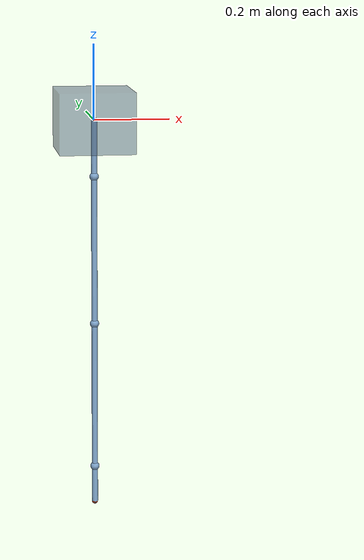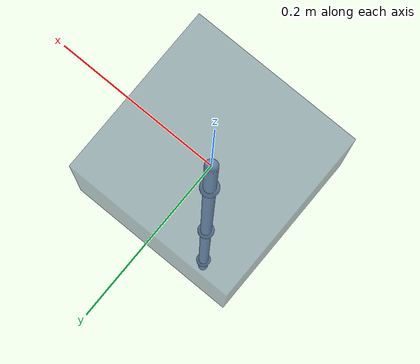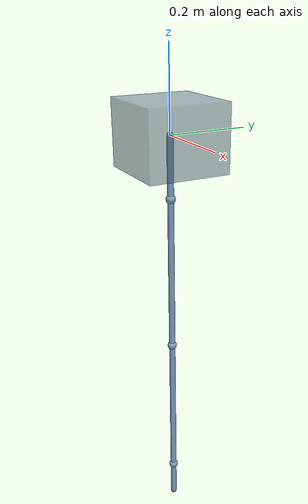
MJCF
<mujoco model="paper_compat_srs_declared_assumptions">
  <compiler angle="radian" inertiafromgeom="false" fusestatic="false" />
  <option timestep="0.002" gravity="0 0 0" integrator="RK4" tolerance="1e-12" iterations="100" />
  <default>
    <joint damping="0" armature="0" frictionloss="0" />
    <geom contype="0" conaffinity="0" mass="0" rgba="0.5 0.65 0.8 1" />
  </default>
  <worldbody>
    <body name="srs_base" pos="0 0 0">
      <freejoint name="base_free" />
      <inertial pos="0 0 0" mass="500" diaginertia="50 50 50" />
      <geom type="box" size="0.10 0.10 0.08" rgba=".3 .4 .5 .5" />
      <body name="DH0" quat="6.123233995736766e-17 1 0 0">
        <body name="B1" quat="0.70710678118654757 0 0 -0.70710678118654757">
          <joint name="srs_joint1" type="hinge" axis="0 0 1" limited="true" range="-6.2831853071795862 6.2831853071795862" />
          <inertial pos="0 0 0.074999999999999997" mass="4" diaginertia="0.52000000000000002 0.52000000000000002 0.14000000000000001" />
          <geom type="capsule" fromto="0 0 0 0 0 0.14999999999999999" size=".008" />
          <body name="DH1" pos="0 0 0.14999999999999999" quat="0.70710678118654757 0.70710678118654757 0 0">
            <body name="B2" quat="6.123233995736766e-17 0 0 1">
              <joint name="srs_joint2" type="hinge" axis="0 0 1" limited="true" range="-6.2831853071795862 6.2831853071795862" />
              <inertial pos="0 0 0" mass="2" diaginertia="0.0030000000000000001 0.0030000000000000001 0.00080000000000000004" />
              <geom type="sphere" size=".012" />
              <body name="DH2" pos="0 0 0" quat="0.70710678118654757 0.70710678118654757 0 0">
                <body name="B3" quat="1 0 0 0">
                  <joint name="srs_joint3" type="hinge" axis="0 0 1" limited="true" range="-6.2831853071795862 6.2831853071795862" />
                  <inertial pos="0 0 0.20000000000000001" mass="6" diaginertia="0.051999999999999998 0.051999999999999998 0.0060000000000000001" />
                  <geom type="capsule" fromto="0 0 0 0 0 0.40000000000000002" size=".008" />
                  <body name="DH3" pos="0 0 0.40000000000000002" quat="0.70710678118654757 -0.70710678118654757 0 0">
                    <body name="B4" quat="1 0 0 0">
                      <joint name="srs_joint4" type="hinge" axis="0 0 1" limited="true" range="-6.2831853071795862 6.2831853071795862" />
                      <inertial pos="0 0 0" mass="2" diaginertia="0.0030000000000000001 0.0030000000000000001 0.00080000000000000004" />
                      <geom type="sphere" size=".012" />
                      <body name="DH4" pos="0 0 0" quat="0.70710678118654757 0.70710678118654757 0 0">
                        <body name="B5" quat="1 0 0 0">
                          <joint name="srs_joint5" type="hinge" axis="0 0 1" limited="true" range="-6.2831853071795862 6.2831853071795862" />
                          <inertial pos="0 0 0.20000000000000001" mass="6" diaginertia="0.051999999999999998 0.051999999999999998 0.0060000000000000001" />
                          <geom type="capsule" fromto="0 0 0 0 0 0.40000000000000002" size=".008" />
                          <body name="DH5" pos="0 0 0.40000000000000002" quat="0.70710678118654757 -0.70710678118654757 0 0">
                            <body name="B6" quat="1 0 0 0">
                              <joint name="srs_joint6" type="hinge" axis="0 0 1" limited="true" range="-6.2831853071795862 6.2831853071795862" />
                              <inertial pos="0 0 0" mass="2" diaginertia="0.0030000000000000001 0.0030000000000000001 0.00080000000000000004" />
                              <geom type="sphere" size=".012" />
                              <body name="DH6" pos="0 0 0" quat="0.70710678118654757 0.70710678118654757 0 0">
                                <body name="B7" quat="1 0 0 0">
                                  <joint name="srs_joint7" type="hinge" axis="0 0 1" limited="true" range="-6.2831853071795862 6.2831853071795862" />
                                  <inertial pos="0 0 0.050000000000000003" mass="2" diaginertia="0.0030000000000000001 0.0030000000000000001 0.00080000000000000004" />
                                  <geom type="capsule" fromto="0 0 0 0 0 0.10000000000000001" size=".008" />
                                  <body name="DH7" pos="0 0 0.10000000000000001" quat="1 0 0 0">
                                    <site name="flange_site" size=".008" rgba="1 .3 .1 1" />
                                  </body>
                                </body>
                              </body>
                            </body>
                          </body>
                        </body>
                      </body>
                    </body>
                  </body>
                </body>
              </body>
            </body>
          </body>
        </body>
      </body>
    </body>
  </worldbody>
  <actuator>
    <motor name="tau1" joint="srs_joint1" gear="1" ctrllimited="true" ctrlrange="-50 50" />
    <motor name="tau2" joint="srs_joint2" gear="1" ctrllimited="true" ctrlrange="-50 50" />
    <motor name="tau3" joint="srs_joint3" gear="1" ctrllimited="true" ctrlrange="-50 50" />
    <motor name="tau4" joint="srs_joint4" gear="1" ctrllimited="true" ctrlrange="-50 50" />
    <motor name="tau5" joint="srs_joint5" gear="1" ctrllimited="true" ctrlrange="-50 50" />
    <motor name="tau6" joint="srs_joint6" gear="1" ctrllimited="true" ctrlrange="-50 50" />
    <motor name="tau7" joint="srs_joint7" gear="1" ctrllimited="true" ctrlrange="-50 50" />
  </actuator>
</mujoco>
